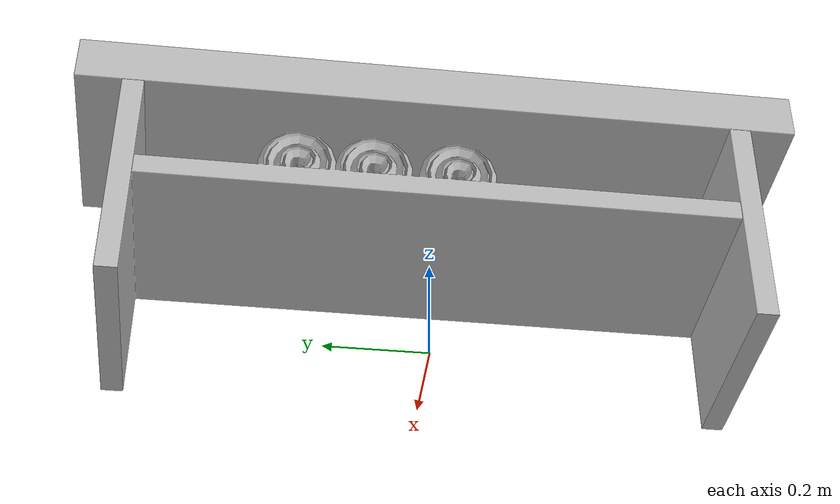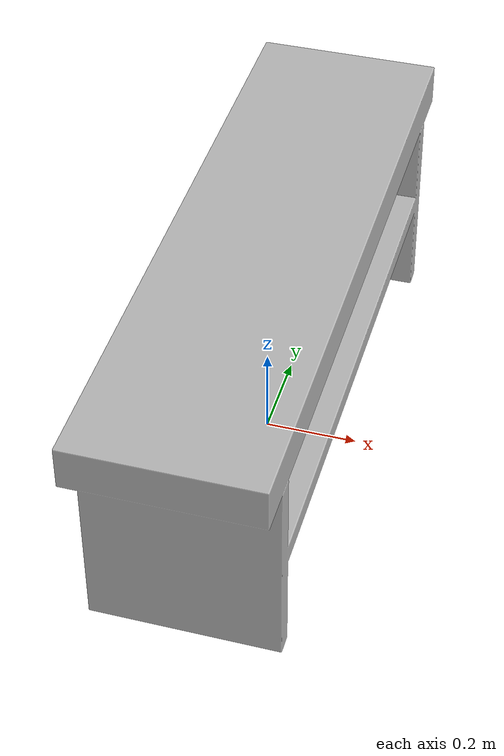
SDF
<?xml version='1.0'?>
<sdf version='1.4'>
  <model name='s__1941'>
    <pose>0 0 0 0 0 0</pose>
    <static>true</static>
    <link name='link'>
      <collision name='collision'>
        <pose>0 0 0 0 0 0</pose>
        <geometry>
          <box>
            <size>0.400001 1.4 2</size>
          </box>
        </geometry>
      </collision>
      <visual name='visual'>
        <pose>0 0 0 0 0 0</pose>
        <geometry>
          <mesh><uri>model://s__1941/s__1941.dae</uri></mesh>
        </geometry>
      </visual>
    </link>
  </model>
</sdf>
